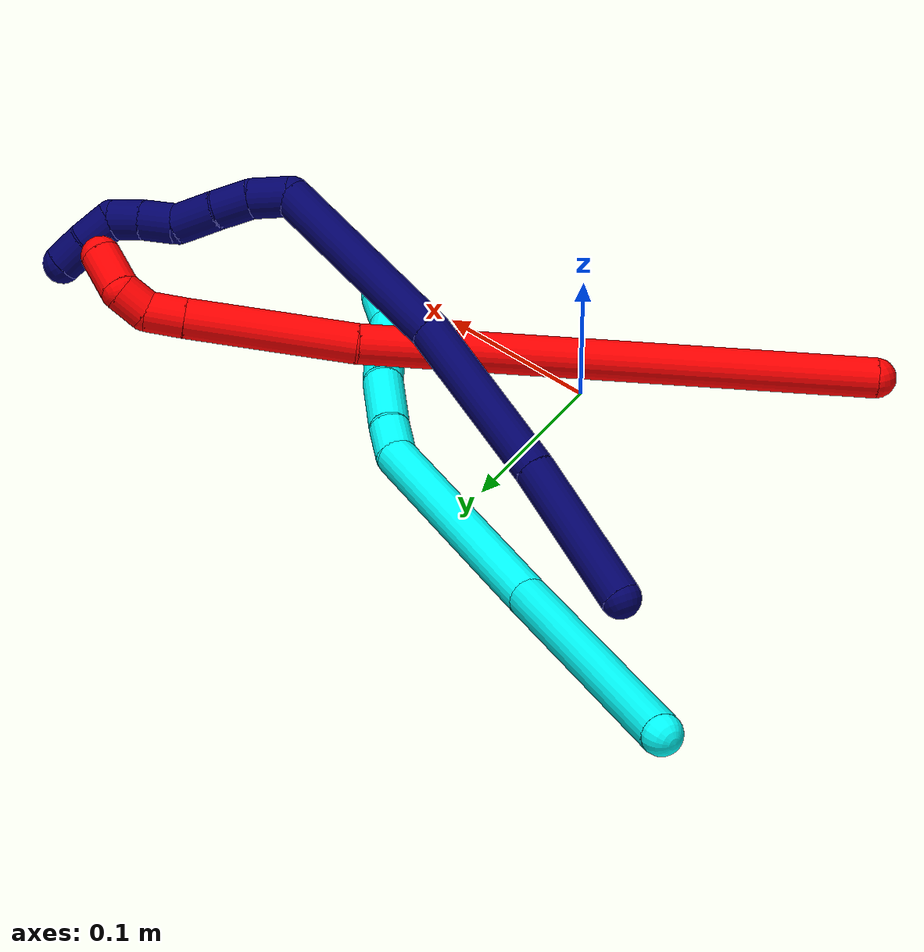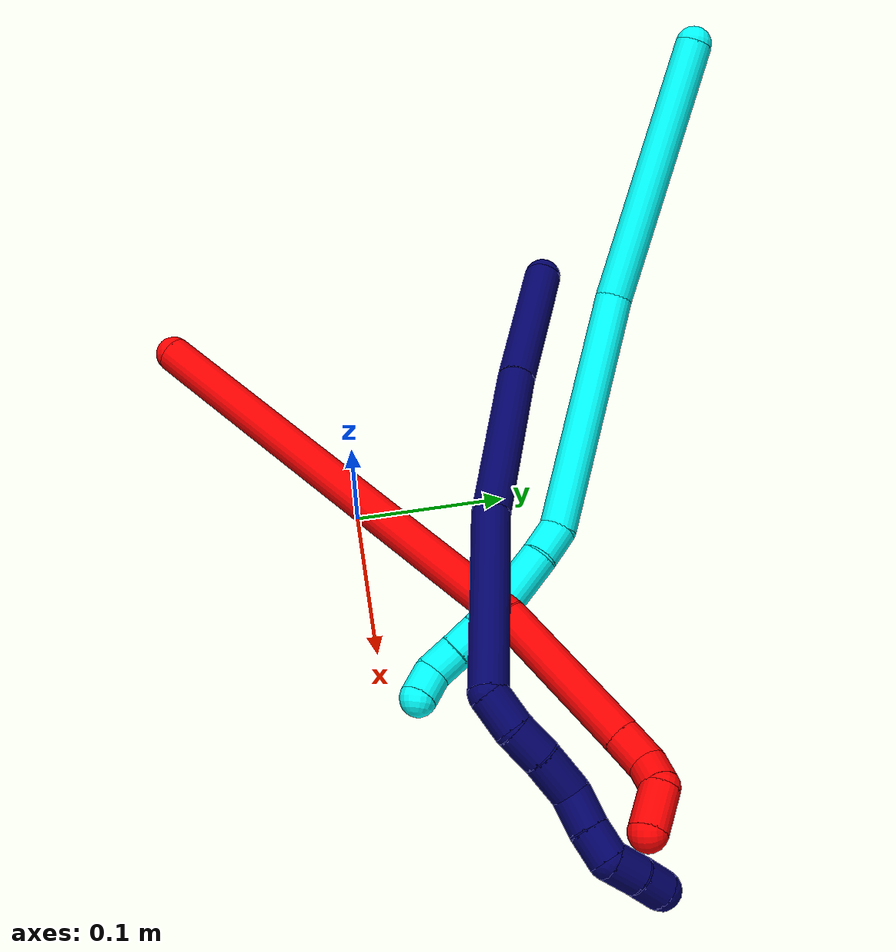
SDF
<sdf version="1.7">
 <world name="default">
  <model name="2">
   <static>0</static>
   <link name="2">
    <collision name="collision-cylinder-e_1_1_4">
     <pose>0.093615 0.027585 0.126773 -0.214255 0.62505 -0.069467</pose>
     <geometry><cylinder><radius>0.0125</radius><length>0.319976</length></cylinder></geometry>
     <surface>
      <friction><ode><mu>1.16</mu><mu2>1.16</mu2><slip1>0</slip1><slip2>0</slip2></ode></friction>
      <contact><ode><kp>1e+06</kp><kd>1</kd><max_vel>0</max_vel><min_depth>0.001</min_depth></ode></contact>
     </surface>
    </collision>
    <visual name="visual-cylinder-e_1_1_4">
     <pose>0.093615 0.027585 0.126773 -0.214255 0.62505 -0.069467</pose>
     <geometry><cylinder><radius>0.0125</radius><length>0.319976</length></cylinder></geometry>
     <material><ambient>1 0 0 1</ambient></material>
    </visual>
    <collision name="collision-cylinder-e_2_4_5">
     <pose>0.223835 0.065012 0.290709 -0.258869 0.760906 -0.10402</pose>
     <geometry><cylinder><radius>0.0125</radius><length>0.106167</length></cylinder></geometry>
     <surface>
      <friction><ode><mu>1.16</mu><mu2>1.16</mu2><slip1>0</slip1><slip2>0</slip2></ode></friction>
      <contact><ode><kp>1e+06</kp><kd>1</kd><max_vel>0</max_vel><min_depth>0.001</min_depth></ode></contact>
     </surface>
    </collision>
    <visual name="visual-cylinder-e_2_4_5">
     <pose>0.223835 0.065012 0.290709 -0.258869 0.760906 -0.10402</pose>
     <geometry><cylinder><radius>0.0125</radius><length>0.106167</length></cylinder></geometry>
     <material><ambient>1 0 0 1</ambient></material>
    </visual>
    <collision name="collision-cylinder-e_3_5_6">
     <pose>0.269037 0.076873 0.336244 -0.236797 0.784462 -0.098336</pose>
     <geometry><cylinder><radius>0.0125</radius><length>0.024336</length></cylinder></geometry>
     <surface>
      <friction><ode><mu>1.16</mu><mu2>1.16</mu2><slip1>0</slip1><slip2>0</slip2></ode></friction>
      <contact><ode><kp>1e+06</kp><kd>1</kd><max_vel>0</max_vel><min_depth>0.001</min_depth></ode></contact>
     </surface>
    </collision>
    <visual name="visual-cylinder-e_3_5_6">
     <pose>0.269037 0.076873 0.336244 -0.236797 0.784462 -0.098336</pose>
     <geometry><cylinder><radius>0.0125</radius><length>0.024336</length></cylinder></geometry>
     <material><ambient>1 0 0 1</ambient></material>
    </visual>
    <collision name="collision-cylinder-e_4_6_7">
     <pose>0.285978 0.076029 0.349469 0.533204 0.976835 0.288219</pose>
     <geometry><cylinder><radius>0.0125</radius><length>0.020141</length></cylinder></geometry>
     <surface>
      <friction><ode><mu>1.16</mu><mu2>1.16</mu2><slip1>0</slip1><slip2>0</slip2></ode></friction>
      <contact><ode><kp>1e+06</kp><kd>1</kd><max_vel>0</max_vel><min_depth>0.001</min_depth></ode></contact>
     </surface>
    </collision>
    <visual name="visual-cylinder-e_4_6_7">
     <pose>0.285978 0.076029 0.349469 0.533204 0.976835 0.288219</pose>
     <geometry><cylinder><radius>0.0125</radius><length>0.020141</length></cylinder></geometry>
     <material><ambient>1 0 0 1</ambient></material>
    </visual>
    <collision name="collision-cylinder-e_5_7_2">
     <pose>0.308778 0.072412 0.351808 2.85108 1.39116 2.79463</pose>
     <geometry><cylinder><radius>0.0125</radius><length>0.02938</length></cylinder></geometry>
     <surface>
      <friction><ode><mu>1.16</mu><mu2>1.16</mu2><slip1>0</slip1><slip2>0</slip2></ode></friction>
      <contact><ode><kp>1e+06</kp><kd>1</kd><max_vel>0</max_vel><min_depth>0.001</min_depth></ode></contact>
     </surface>
    </collision>
    <visual name="visual-cylinder-e_5_7_2">
     <pose>0.308778 0.072412 0.351808 2.85108 1.39116 2.79463</pose>
     <geometry><cylinder><radius>0.0125</radius><length>0.02938</length></cylinder></geometry>
     <material><ambient>1 0 0 1</ambient></material>
    </visual>
    <collision name="collision-sphere-2">
     <pose>0.323231 0.07166 0.349293 0 -0 0</pose>
     <geometry><sphere><radius>0.0125</radius></sphere></geometry>
     <surface>
      <friction><ode><mu>1.16</mu><mu2>1.16</mu2><slip1>0</slip1><slip2>0</slip2></ode></friction>
      <contact><ode><kp>1e+06</kp><kd>1</kd><max_vel>0</max_vel><min_depth>0.001</min_depth></ode></contact>
     </surface>
    </collision>
    <visual name="visual-sphere-2">
     <pose>0.323231 0.07166 0.349293 0 -0 0</pose>
     <geometry><sphere><radius>0.0125</radius></sphere></geometry>
     <material><ambient>1 0 0 1</ambient></material>
    </visual>
    <collision name="collision-sphere-7">
     <pose>0.294324 0.073164 0.354323 0 -0 0</pose>
     <geometry><sphere><radius>0.0125</radius></sphere></geometry>
     <surface>
      <friction><ode><mu>1.16</mu><mu2>1.16</mu2><slip1>0</slip1><slip2>0</slip2></ode></friction>
      <contact><ode><kp>1e+06</kp><kd>1</kd><max_vel>0</max_vel><min_depth>0.001</min_depth></ode></contact>
     </surface>
    </collision>
    <visual name="visual-sphere-7">
     <pose>0.294324 0.073164 0.354323 0 -0 0</pose>
     <geometry><sphere><radius>0.0125</radius></sphere></geometry>
     <material><ambient>1 0 0 1</ambient></material>
    </visual>
    <collision name="collision-sphere-6">
     <pose>0.277633 0.078893 0.344616 0 -0 0</pose>
     <geometry><sphere><radius>0.0125</radius></sphere></geometry>
     <surface>
      <friction><ode><mu>1.16</mu><mu2>1.16</mu2><slip1>0</slip1><slip2>0</slip2></ode></friction>
      <contact><ode><kp>1e+06</kp><kd>1</kd><max_vel>0</max_vel><min_depth>0.001</min_depth></ode></contact>
     </surface>
    </collision>
    <visual name="visual-sphere-6">
     <pose>0.277633 0.078893 0.344616 0 -0 0</pose>
     <geometry><sphere><radius>0.0125</radius></sphere></geometry>
     <material><ambient>1 0 0 1</ambient></material>
    </visual>
    <collision name="collision-sphere-5">
     <pose>0.260441 0.074853 0.327872 0 -0 0</pose>
     <geometry><sphere><radius>0.0125</radius></sphere></geometry>
     <surface>
      <friction><ode><mu>1.16</mu><mu2>1.16</mu2><slip1>0</slip1><slip2>0</slip2></ode></friction>
      <contact><ode><kp>1e+06</kp><kd>1</kd><max_vel>0</max_vel><min_depth>0.001</min_depth></ode></contact>
     </surface>
    </collision>
    <visual name="visual-sphere-5">
     <pose>0.260441 0.074853 0.327872 0 -0 0</pose>
     <geometry><sphere><radius>0.0125</radius></sphere></geometry>
     <material><ambient>1 0 0 1</ambient></material>
    </visual>
    <collision name="collision-sphere-1">
     <geometry><sphere><radius>0.0125</radius></sphere></geometry>
     <surface>
      <friction><ode><mu>1.16</mu><mu2>1.16</mu2><slip1>0</slip1><slip2>0</slip2></ode></friction>
      <contact><ode><kp>1e+06</kp><kd>1</kd><max_vel>0</max_vel><min_depth>0.001</min_depth></ode></contact>
     </surface>
    </collision>
    <visual name="visual-sphere-1">
     <geometry><sphere><radius>0.0125</radius></sphere></geometry>
     <material><ambient>1 0 0 1</ambient></material>
    </visual>
    <collision name="collision-sphere-4">
     <pose>0.18723 0.05517 0.253547 0 -0 0</pose>
     <geometry><sphere><radius>0.0125</radius></sphere></geometry>
     <surface>
      <friction><ode><mu>1.16</mu><mu2>1.16</mu2><slip1>0</slip1><slip2>0</slip2></ode></friction>
      <contact><ode><kp>1e+06</kp><kd>1</kd><max_vel>0</max_vel><min_depth>0.001</min_depth></ode></contact>
     </surface>
    </collision>
    <visual name="visual-sphere-4">
     <pose>0.18723 0.05517 0.253547 0 -0 0</pose>
     <geometry><sphere><radius>0.0125</radius></sphere></geometry>
     <material><ambient>1 0 0 1</ambient></material>
    </visual>
    <inertial>
     <pose>0.150195 0.042516 0.193971 0 -0 0</pose>
     <mass>0.5</mass>
     <inertia>
      <ixx>0.002159</ixx>
      <ixy>0</ixy>
      <ixz>0</ixz>
      <iyy>0.002649</iyy>
      <iyz>0</iyz>
      <izz>-0.002147</izz>
     </inertia>
    </inertial>
   </link>
   <pose>-0.142287 -0.112743 0.011897 -1.27674 -0.086028 -0.278756</pose>
  </model>
  <model name="3">
   <static>0</static>
   <link name="3">
    <collision name="collision-cylinder-e_1_1_4">
     <pose>-0.000251 -0.025427 -0.089431 2.86458 -0.002703 -0.019392</pose>
     <geometry><cylinder><radius>0.0125</radius><length>0.185951</length></cylinder></geometry>
     <surface>
      <friction><ode><mu>1.16</mu><mu2>1.16</mu2><slip1>0</slip1><slip2>0</slip2></ode></friction>
      <contact><ode><kp>1e+06</kp><kd>1</kd><max_vel>0</max_vel><min_depth>0.001</min_depth></ode></contact>
     </surface>
    </collision>
    <visual name="visual-cylinder-e_1_1_4">
     <pose>-0.000251 -0.025427 -0.089431 2.86458 -0.002703 -0.019392</pose>
     <geometry><cylinder><radius>0.0125</radius><length>0.185951</length></cylinder></geometry>
     <material><ambient>0.003922 1 0.996078 1</ambient></material>
    </visual>
    <collision name="collision-cylinder-e_2_4_5">
     <pose>0.005912 -0.059751 -0.261089 3.0338 0.0774 1.24505</pose>
     <geometry><cylinder><radius>0.0125</radius><length>0.165912</length></cylinder></geometry>
     <surface>
      <friction><ode><mu>1.16</mu><mu2>1.16</mu2><slip1>0</slip1><slip2>0</slip2></ode></friction>
      <contact><ode><kp>1e+06</kp><kd>1</kd><max_vel>0</max_vel><min_depth>0.001</min_depth></ode></contact>
     </surface>
    </collision>
    <visual name="visual-cylinder-e_2_4_5">
     <pose>0.005912 -0.059751 -0.261089 3.0338 0.0774 1.24505</pose>
     <geometry><cylinder><radius>0.0125</radius><length>0.165912</length></cylinder></geometry>
     <material><ambient>0.003922 1 0.996078 1</ambient></material>
    </visual>
    <collision name="collision-cylinder-e_3_5_6">
     <pose>0.017609 -0.070813 -0.353676 2.93564 0.462976 2.31521</pose>
     <geometry><cylinder><radius>0.0125</radius><length>0.023656</length></cylinder></geometry>
     <surface>
      <friction><ode><mu>1.16</mu><mu2>1.16</mu2><slip1>0</slip1><slip2>0</slip2></ode></friction>
      <contact><ode><kp>1e+06</kp><kd>1</kd><max_vel>0</max_vel><min_depth>0.001</min_depth></ode></contact>
     </surface>
    </collision>
    <visual name="visual-cylinder-e_3_5_6">
     <pose>0.017609 -0.070813 -0.353676 2.93564 0.462976 2.31521</pose>
     <geometry><cylinder><radius>0.0125</radius><length>0.023656</length></cylinder></geometry>
     <material><ambient>0.003922 1 0.996078 1</ambient></material>
    </visual>
    <collision name="collision-cylinder-e_4_6_7">
     <pose>0.030888 -0.079716 -0.381707 2.77729 0.400032 1.66652</pose>
     <geometry><cylinder><radius>0.0125</radius><length>0.041069</length></cylinder></geometry>
     <surface>
      <friction><ode><mu>1.16</mu><mu2>1.16</mu2><slip1>0</slip1><slip2>0</slip2></ode></friction>
      <contact><ode><kp>1e+06</kp><kd>1</kd><max_vel>0</max_vel><min_depth>0.001</min_depth></ode></contact>
     </surface>
    </collision>
    <visual name="visual-cylinder-e_4_6_7">
     <pose>0.030888 -0.079716 -0.381707 2.77729 0.400032 1.66652</pose>
     <geometry><cylinder><radius>0.0125</radius><length>0.041069</length></cylinder></geometry>
     <material><ambient>0.003922 1 0.996078 1</ambient></material>
    </visual>
    <collision name="collision-cylinder-e_5_7_8">
     <pose>0.042732 -0.091796 -0.408161 2.59523 0.358098 1.14705</pose>
     <geometry><cylinder><radius>0.0125</radius><length>0.021949</length></cylinder></geometry>
     <surface>
      <friction><ode><mu>1.16</mu><mu2>1.16</mu2><slip1>0</slip1><slip2>0</slip2></ode></friction>
      <contact><ode><kp>1e+06</kp><kd>1</kd><max_vel>0</max_vel><min_depth>0.001</min_depth></ode></contact>
     </surface>
    </collision>
    <visual name="visual-cylinder-e_5_7_8">
     <pose>0.042732 -0.091796 -0.408161 2.59523 0.358098 1.14705</pose>
     <geometry><cylinder><radius>0.0125</radius><length>0.021949</length></cylinder></geometry>
     <material><ambient>0.003922 1 0.996078 1</ambient></material>
    </visual>
    <collision name="collision-cylinder-e_6_8_9">
     <pose>0.051042 -0.101947 -0.424779 2.59093 0.451919 1.36612</pose>
     <geometry><cylinder><radius>0.0125</radius><length>0.020442</length></cylinder></geometry>
     <surface>
      <friction><ode><mu>1.16</mu><mu2>1.16</mu2><slip1>0</slip1><slip2>0</slip2></ode></friction>
      <contact><ode><kp>1e+06</kp><kd>1</kd><max_vel>0</max_vel><min_depth>0.001</min_depth></ode></contact>
     </surface>
    </collision>
    <visual name="visual-cylinder-e_6_8_9">
     <pose>0.051042 -0.101947 -0.424779 2.59093 0.451919 1.36612</pose>
     <geometry><cylinder><radius>0.0125</radius><length>0.020442</length></cylinder></geometry>
     <material><ambient>0.003922 1 0.996078 1</ambient></material>
    </visual>
    <collision name="collision-cylinder-e_7_9_10">
     <pose>0.059876 -0.112036 -0.440329 2.54165 0.437384 1.24611</pose>
     <geometry><cylinder><radius>0.0125</radius><length>0.020637</length></cylinder></geometry>
     <surface>
      <friction><ode><mu>1.16</mu><mu2>1.16</mu2><slip1>0</slip1><slip2>0</slip2></ode></friction>
      <contact><ode><kp>1e+06</kp><kd>1</kd><max_vel>0</max_vel><min_depth>0.001</min_depth></ode></contact>
     </surface>
    </collision>
    <visual name="visual-cylinder-e_7_9_10">
     <pose>0.059876 -0.112036 -0.440329 2.54165 0.437384 1.24611</pose>
     <geometry><cylinder><radius>0.0125</radius><length>0.020637</length></cylinder></geometry>
     <material><ambient>0.003922 1 0.996078 1</ambient></material>
    </visual>
    <collision name="collision-cylinder-e_8_10_2">
     <pose>0.069027 -0.117448 -0.457044 3.12661 0.488211 3.08146</pose>
     <geometry><cylinder><radius>0.0125</radius><length>0.020384</length></cylinder></geometry>
     <surface>
      <friction><ode><mu>1.16</mu><mu2>1.16</mu2><slip1>0</slip1><slip2>0</slip2></ode></friction>
      <contact><ode><kp>1e+06</kp><kd>1</kd><max_vel>0</max_vel><min_depth>0.001</min_depth></ode></contact>
     </surface>
    </collision>
    <visual name="visual-cylinder-e_8_10_2">
     <pose>0.069027 -0.117448 -0.457044 3.12661 0.488211 3.08146</pose>
     <geometry><cylinder><radius>0.0125</radius><length>0.020384</length></cylinder></geometry>
     <material><ambient>0.003922 1 0.996078 1</ambient></material>
    </visual>
    <collision name="collision-sphere-2">
     <pose>0.073808 -0.117583 -0.466045 0 -0 0</pose>
     <geometry><sphere><radius>0.0125</radius></sphere></geometry>
     <surface>
      <friction><ode><mu>1.16</mu><mu2>1.16</mu2><slip1>0</slip1><slip2>0</slip2></ode></friction>
      <contact><ode><kp>1e+06</kp><kd>1</kd><max_vel>0</max_vel><min_depth>0.001</min_depth></ode></contact>
     </surface>
    </collision>
    <visual name="visual-sphere-2">
     <pose>0.073808 -0.117583 -0.466045 0 -0 0</pose>
     <geometry><sphere><radius>0.0125</radius></sphere></geometry>
     <material><ambient>0.003922 1 0.996078 1</ambient></material>
    </visual>
    <collision name="collision-sphere-10">
     <pose>0.064246 -0.117313 -0.448044 0 -0 0</pose>
     <geometry><sphere><radius>0.0125</radius></sphere></geometry>
     <surface>
      <friction><ode><mu>1.16</mu><mu2>1.16</mu2><slip1>0</slip1><slip2>0</slip2></ode></friction>
      <contact><ode><kp>1e+06</kp><kd>1</kd><max_vel>0</max_vel><min_depth>0.001</min_depth></ode></contact>
     </surface>
    </collision>
    <visual name="visual-sphere-10">
     <pose>0.064246 -0.117313 -0.448044 0 -0 0</pose>
     <geometry><sphere><radius>0.0125</radius></sphere></geometry>
     <material><ambient>0.003922 1 0.996078 1</ambient></material>
    </visual>
    <collision name="collision-sphere-9">
     <pose>0.055505 -0.106758 -0.432614 0 -0 0</pose>
     <geometry><sphere><radius>0.0125</radius></sphere></geometry>
     <surface>
      <friction><ode><mu>1.16</mu><mu2>1.16</mu2><slip1>0</slip1><slip2>0</slip2></ode></friction>
      <contact><ode><kp>1e+06</kp><kd>1</kd><max_vel>0</max_vel><min_depth>0.001</min_depth></ode></contact>
     </surface>
    </collision>
    <visual name="visual-sphere-9">
     <pose>0.055505 -0.106758 -0.432614 0 -0 0</pose>
     <geometry><sphere><radius>0.0125</radius></sphere></geometry>
     <material><ambient>0.003922 1 0.996078 1</ambient></material>
    </visual>
    <collision name="collision-sphere-4">
     <pose>-0.000503 -0.050854 -0.178862 0 -0 0</pose>
     <geometry><sphere><radius>0.0125</radius></sphere></geometry>
     <surface>
      <friction><ode><mu>1.16</mu><mu2>1.16</mu2><slip1>0</slip1><slip2>0</slip2></ode></friction>
      <contact><ode><kp>1e+06</kp><kd>1</kd><max_vel>0</max_vel><min_depth>0.001</min_depth></ode></contact>
     </surface>
    </collision>
    <visual name="visual-sphere-4">
     <pose>-0.000503 -0.050854 -0.178862 0 -0 0</pose>
     <geometry><sphere><radius>0.0125</radius></sphere></geometry>
     <material><ambient>0.003922 1 0.996078 1</ambient></material>
    </visual>
    <collision name="collision-sphere-1">
     <geometry><sphere><radius>0.0125</radius></sphere></geometry>
     <surface>
      <friction><ode><mu>1.16</mu><mu2>1.16</mu2><slip1>0</slip1><slip2>0</slip2></ode></friction>
      <contact><ode><kp>1e+06</kp><kd>1</kd><max_vel>0</max_vel><min_depth>0.001</min_depth></ode></contact>
     </surface>
    </collision>
    <visual name="visual-sphere-1">
     <geometry><sphere><radius>0.0125</radius></sphere></geometry>
     <material><ambient>0.003922 1 0.996078 1</ambient></material>
    </visual>
    <collision name="collision-sphere-8">
     <pose>0.046578 -0.097136 -0.416943 0 -0 0</pose>
     <geometry><sphere><radius>0.0125</radius></sphere></geometry>
     <surface>
      <friction><ode><mu>1.16</mu><mu2>1.16</mu2><slip1>0</slip1><slip2>0</slip2></ode></friction>
      <contact><ode><kp>1e+06</kp><kd>1</kd><max_vel>0</max_vel><min_depth>0.001</min_depth></ode></contact>
     </surface>
    </collision>
    <visual name="visual-sphere-8">
     <pose>0.046578 -0.097136 -0.416943 0 -0 0</pose>
     <geometry><sphere><radius>0.0125</radius></sphere></geometry>
     <material><ambient>0.003922 1 0.996078 1</ambient></material>
    </visual>
    <collision name="collision-sphere-5">
     <pose>0.012326 -0.068649 -0.343317 0 -0 0</pose>
     <geometry><sphere><radius>0.0125</radius></sphere></geometry>
     <surface>
      <friction><ode><mu>1.16</mu><mu2>1.16</mu2><slip1>0</slip1><slip2>0</slip2></ode></friction>
      <contact><ode><kp>1e+06</kp><kd>1</kd><max_vel>0</max_vel><min_depth>0.001</min_depth></ode></contact>
     </surface>
    </collision>
    <visual name="visual-sphere-5">
     <pose>0.012326 -0.068649 -0.343317 0 -0 0</pose>
     <geometry><sphere><radius>0.0125</radius></sphere></geometry>
     <material><ambient>0.003922 1 0.996078 1</ambient></material>
    </visual>
    <collision name="collision-sphere-6">
     <pose>0.022891 -0.072978 -0.364035 0 -0 0</pose>
     <geometry><sphere><radius>0.0125</radius></sphere></geometry>
     <surface>
      <friction><ode><mu>1.16</mu><mu2>1.16</mu2><slip1>0</slip1><slip2>0</slip2></ode></friction>
      <contact><ode><kp>1e+06</kp><kd>1</kd><max_vel>0</max_vel><min_depth>0.001</min_depth></ode></contact>
     </surface>
    </collision>
    <visual name="visual-sphere-6">
     <pose>0.022891 -0.072978 -0.364035 0 -0 0</pose>
     <geometry><sphere><radius>0.0125</radius></sphere></geometry>
     <material><ambient>0.003922 1 0.996078 1</ambient></material>
    </visual>
    <collision name="collision-sphere-7">
     <pose>0.038885 -0.086455 -0.399379 0 -0 0</pose>
     <geometry><sphere><radius>0.0125</radius></sphere></geometry>
     <surface>
      <friction><ode><mu>1.16</mu><mu2>1.16</mu2><slip1>0</slip1><slip2>0</slip2></ode></friction>
      <contact><ode><kp>1e+06</kp><kd>1</kd><max_vel>0</max_vel><min_depth>0.001</min_depth></ode></contact>
     </surface>
    </collision>
    <visual name="visual-sphere-7">
     <pose>0.038885 -0.086455 -0.399379 0 -0 0</pose>
     <geometry><sphere><radius>0.0125</radius></sphere></geometry>
     <material><ambient>0.003922 1 0.996078 1</ambient></material>
    </visual>
    <inertial>
     <pose>0.014486 -0.056791 -0.240072 0 -0 0</pose>
     <mass>0.5</mass>
     <inertia>
      <ixx>0.001038</ixx>
      <ixy>0</ixy>
      <ixz>0</ixz>
      <iyy>-0.00028</iyy>
      <iyz>0</iyz>
      <izz>0.000124</izz>
     </inertia>
    </inertial>
   </link>
   <pose>-0.25679 0.27335 0.142265 1.25496 -0.79013 -1.6143</pose>
  </model>
  <model name="7">
   <static>0</static>
   <link name="7">
    <collision name="collision-cylinder-e_1_1_4">
     <pose>0.011891 -0.012845 0.045643 0.274335 0.245724 0.034087</pose>
     <geometry><cylinder><radius>0.0125</radius><length>0.097768</length></cylinder></geometry>
     <surface>
      <friction><ode><mu>1.16</mu><mu2>1.16</mu2><slip1>0</slip1><slip2>0</slip2></ode></friction>
      <contact><ode><kp>1e+06</kp><kd>1</kd><max_vel>0</max_vel><min_depth>0.001</min_depth></ode></contact>
     </surface>
    </collision>
    <visual name="visual-cylinder-e_1_1_4">
     <pose>0.011891 -0.012845 0.045643 0.274335 0.245724 0.034087</pose>
     <geometry><cylinder><radius>0.0125</radius><length>0.097768</length></cylinder></geometry>
     <material><ambient>0.003922 0 0.403922 1</ambient></material>
    </visual>
    <collision name="collision-cylinder-e_2_4_5">
     <pose>0.040296 -0.040086 0.143163 0.270683 0.29761 0.040823</pose>
     <geometry><cylinder><radius>0.0125</radius><length>0.112627</length></cylinder></geometry>
     <surface>
      <friction><ode><mu>1.16</mu><mu2>1.16</mu2><slip1>0</slip1><slip2>0</slip2></ode></friction>
      <contact><ode><kp>1e+06</kp><kd>1</kd><max_vel>0</max_vel><min_depth>0.001</min_depth></ode></contact>
     </surface>
    </collision>
    <visual name="visual-cylinder-e_2_4_5">
     <pose>0.040296 -0.040086 0.143163 0.270683 0.29761 0.040823</pose>
     <geometry><cylinder><radius>0.0125</radius><length>0.112627</length></cylinder></geometry>
     <material><ambient>0.003922 0 0.403922 1</ambient></material>
    </visual>
    <collision name="collision-cylinder-e_3_5_6">
     <pose>0.083966 -0.069084 0.250632 0.256872 0.441383 0.057931</pose>
     <geometry><cylinder><radius>0.0125</radius><length>0.12714</length></cylinder></geometry>
     <surface>
      <friction><ode><mu>1.16</mu><mu2>1.16</mu2><slip1>0</slip1><slip2>0</slip2></ode></friction>
      <contact><ode><kp>1e+06</kp><kd>1</kd><max_vel>0</max_vel><min_depth>0.001</min_depth></ode></contact>
     </surface>
    </collision>
    <visual name="visual-cylinder-e_3_5_6">
     <pose>0.083966 -0.069084 0.250632 0.256872 0.441383 0.057931</pose>
     <geometry><cylinder><radius>0.0125</radius><length>0.12714</length></cylinder></geometry>
     <material><ambient>0.003922 0 0.403922 1</ambient></material>
    </visual>
    <collision name="collision-cylinder-e_4_6_7">
     <pose>0.122877 -0.085738 0.310267 0.469467 1.20266 0.325248</pose>
     <geometry><cylinder><radius>0.0125</radius><length>0.025199</length></cylinder></geometry>
     <surface>
      <friction><ode><mu>1.16</mu><mu2>1.16</mu2><slip1>0</slip1><slip2>0</slip2></ode></friction>
      <contact><ode><kp>1e+06</kp><kd>1</kd><max_vel>0</max_vel><min_depth>0.001</min_depth></ode></contact>
     </surface>
    </collision>
    <visual name="visual-cylinder-e_4_6_7">
     <pose>0.122877 -0.085738 0.310267 0.469467 1.20266 0.325248</pose>
     <geometry><cylinder><radius>0.0125</radius><length>0.025199</length></cylinder></geometry>
     <material><ambient>0.003922 0 0.403922 1</ambient></material>
    </visual>
    <collision name="collision-cylinder-e_5_7_8">
     <pose>0.145969 -0.089806 0.315199 1.15597 1.37882 0.986717</pose>
     <geometry><cylinder><radius>0.0125</radius><length>0.023098</length></cylinder></geometry>
     <surface>
      <friction><ode><mu>1.16</mu><mu2>1.16</mu2><slip1>0</slip1><slip2>0</slip2></ode></friction>
      <contact><ode><kp>1e+06</kp><kd>1</kd><max_vel>0</max_vel><min_depth>0.001</min_depth></ode></contact>
     </surface>
    </collision>
    <visual name="visual-cylinder-e_5_7_8">
     <pose>0.145969 -0.089806 0.315199 1.15597 1.37882 0.986717</pose>
     <geometry><cylinder><radius>0.0125</radius><length>0.023098</length></cylinder></geometry>
     <material><ambient>0.003922 0 0.403922 1</ambient></material>
    </visual>
    <collision name="collision-cylinder-e_6_8_9">
     <pose>0.170704 -0.09577 0.31699 1.34592 1.27729 1.06871</pose>
     <geometry><cylinder><radius>0.0125</radius><length>0.027993</length></cylinder></geometry>
     <surface>
      <friction><ode><mu>1.16</mu><mu2>1.16</mu2><slip1>0</slip1><slip2>0</slip2></ode></friction>
      <contact><ode><kp>1e+06</kp><kd>1</kd><max_vel>0</max_vel><min_depth>0.001</min_depth></ode></contact>
     </surface>
    </collision>
    <visual name="visual-cylinder-e_6_8_9">
     <pose>0.170704 -0.09577 0.31699 1.34592 1.27729 1.06871</pose>
     <geometry><cylinder><radius>0.0125</radius><length>0.027993</length></cylinder></geometry>
     <material><ambient>0.003922 0 0.403922 1</ambient></material>
    </visual>
    <collision name="collision-cylinder-e_7_9_10">
     <pose>0.193852 -0.102384 0.323291 0.458782 1.01763 0.259037</pose>
     <geometry><cylinder><radius>0.0125</radius><length>0.022918</length></cylinder></geometry>
     <surface>
      <friction><ode><mu>1.16</mu><mu2>1.16</mu2><slip1>0</slip1><slip2>0</slip2></ode></friction>
      <contact><ode><kp>1e+06</kp><kd>1</kd><max_vel>0</max_vel><min_depth>0.001</min_depth></ode></contact>
     </surface>
    </collision>
    <visual name="visual-cylinder-e_7_9_10">
     <pose>0.193852 -0.102384 0.323291 0.458782 1.01763 0.259037</pose>
     <geometry><cylinder><radius>0.0125</radius><length>0.022918</length></cylinder></geometry>
     <material><ambient>0.003922 0 0.403922 1</ambient></material>
    </visual>
    <collision name="collision-cylinder-e_8_10_11">
     <pose>0.213081 -0.106851 0.332737 0.41848 1.13355 0.268662</pose>
     <geometry><cylinder><radius>0.0125</radius><length>0.020926</length></cylinder></geometry>
     <surface>
      <friction><ode><mu>1.16</mu><mu2>1.16</mu2><slip1>0</slip1><slip2>0</slip2></ode></friction>
      <contact><ode><kp>1e+06</kp><kd>1</kd><max_vel>0</max_vel><min_depth>0.001</min_depth></ode></contact>
     </surface>
    </collision>
    <visual name="visual-cylinder-e_8_10_11">
     <pose>0.213081 -0.106851 0.332737 0.41848 1.13355 0.268662</pose>
     <geometry><cylinder><radius>0.0125</radius><length>0.020926</length></cylinder></geometry>
     <material><ambient>0.003922 0 0.403922 1</ambient></material>
    </visual>
    <collision name="collision-cylinder-e_9_11_12">
     <pose>0.23309 -0.110122 0.333544 2.71538 1.24486 2.55583</pose>
     <geometry><cylinder><radius>0.0125</radius><length>0.022232</length></cylinder></geometry>
     <surface>
      <friction><ode><mu>1.16</mu><mu2>1.16</mu2><slip1>0</slip1><slip2>0</slip2></ode></friction>
      <contact><ode><kp>1e+06</kp><kd>1</kd><max_vel>0</max_vel><min_depth>0.001</min_depth></ode></contact>
     </surface>
    </collision>
    <visual name="visual-cylinder-e_9_11_12">
     <pose>0.23309 -0.110122 0.333544 2.71538 1.24486 2.55583</pose>
     <geometry><cylinder><radius>0.0125</radius><length>0.022232</length></cylinder></geometry>
     <material><ambient>0.003922 0 0.403922 1</ambient></material>
    </visual>
    <collision name="collision-cylinder-e_10_12_2">
     <pose>0.252777 -0.113993 0.326923 2.52431 1.14574 2.22346</pose>
     <geometry><cylinder><radius>0.0125</radius><length>0.0201</length></cylinder></geometry>
     <surface>
      <friction><ode><mu>1.16</mu><mu2>1.16</mu2><slip1>0</slip1><slip2>0</slip2></ode></friction>
      <contact><ode><kp>1e+06</kp><kd>1</kd><max_vel>0</max_vel><min_depth>0.001</min_depth></ode></contact>
     </surface>
    </collision>
    <visual name="visual-cylinder-e_10_12_2">
     <pose>0.252777 -0.113993 0.326923 2.52431 1.14574 2.22346</pose>
     <geometry><cylinder><radius>0.0125</radius><length>0.0201</length></cylinder></geometry>
     <material><ambient>0.003922 0 0.403922 1</ambient></material>
    </visual>
    <collision name="collision-sphere-2">
     <pose>0.261932 -0.116391 0.323544 0 -0 0</pose>
     <geometry><sphere><radius>0.0125</radius></sphere></geometry>
     <surface>
      <friction><ode><mu>1.16</mu><mu2>1.16</mu2><slip1>0</slip1><slip2>0</slip2></ode></friction>
      <contact><ode><kp>1e+06</kp><kd>1</kd><max_vel>0</max_vel><min_depth>0.001</min_depth></ode></contact>
     </surface>
    </collision>
    <visual name="visual-sphere-2">
     <pose>0.261932 -0.116391 0.323544 0 -0 0</pose>
     <geometry><sphere><radius>0.0125</radius></sphere></geometry>
     <material><ambient>0.003922 0 0.403922 1</ambient></material>
    </visual>
    <collision name="collision-sphere-12">
     <pose>0.243621 -0.111594 0.330303 0 -0 0</pose>
     <geometry><sphere><radius>0.0125</radius></sphere></geometry>
     <surface>
      <friction><ode><mu>1.16</mu><mu2>1.16</mu2><slip1>0</slip1><slip2>0</slip2></ode></friction>
      <contact><ode><kp>1e+06</kp><kd>1</kd><max_vel>0</max_vel><min_depth>0.001</min_depth></ode></contact>
     </surface>
    </collision>
    <visual name="visual-sphere-12">
     <pose>0.243621 -0.111594 0.330303 0 -0 0</pose>
     <geometry><sphere><radius>0.0125</radius></sphere></geometry>
     <material><ambient>0.003922 0 0.403922 1</ambient></material>
    </visual>
    <collision name="collision-sphere-11">
     <pose>0.222559 -0.108651 0.336785 0 -0 0</pose>
     <geometry><sphere><radius>0.0125</radius></sphere></geometry>
     <surface>
      <friction><ode><mu>1.16</mu><mu2>1.16</mu2><slip1>0</slip1><slip2>0</slip2></ode></friction>
      <contact><ode><kp>1e+06</kp><kd>1</kd><max_vel>0</max_vel><min_depth>0.001</min_depth></ode></contact>
     </surface>
    </collision>
    <visual name="visual-sphere-11">
     <pose>0.222559 -0.108651 0.336785 0 -0 0</pose>
     <geometry><sphere><radius>0.0125</radius></sphere></geometry>
     <material><ambient>0.003922 0 0.403922 1</ambient></material>
    </visual>
    <collision name="collision-sphere-10">
     <pose>0.203602 -0.10505 0.328689 0 -0 0</pose>
     <geometry><sphere><radius>0.0125</radius></sphere></geometry>
     <surface>
      <friction><ode><mu>1.16</mu><mu2>1.16</mu2><slip1>0</slip1><slip2>0</slip2></ode></friction>
      <contact><ode><kp>1e+06</kp><kd>1</kd><max_vel>0</max_vel><min_depth>0.001</min_depth></ode></contact>
     </surface>
    </collision>
    <visual name="visual-sphere-10">
     <pose>0.203602 -0.10505 0.328689 0 -0 0</pose>
     <geometry><sphere><radius>0.0125</radius></sphere></geometry>
     <material><ambient>0.003922 0 0.403922 1</ambient></material>
    </visual>
    <collision name="collision-sphere-9">
     <pose>0.184102 -0.099718 0.317893 0 -0 0</pose>
     <geometry><sphere><radius>0.0125</radius></sphere></geometry>
     <surface>
      <friction><ode><mu>1.16</mu><mu2>1.16</mu2><slip1>0</slip1><slip2>0</slip2></ode></friction>
      <contact><ode><kp>1e+06</kp><kd>1</kd><max_vel>0</max_vel><min_depth>0.001</min_depth></ode></contact>
     </surface>
    </collision>
    <visual name="visual-sphere-9">
     <pose>0.184102 -0.099718 0.317893 0 -0 0</pose>
     <geometry><sphere><radius>0.0125</radius></sphere></geometry>
     <material><ambient>0.003922 0 0.403922 1</ambient></material>
    </visual>
    <collision name="collision-sphere-4">
     <pose>0.023783 -0.02569 0.091285 0 -0 0</pose>
     <geometry><sphere><radius>0.0125</radius></sphere></geometry>
     <surface>
      <friction><ode><mu>1.16</mu><mu2>1.16</mu2><slip1>0</slip1><slip2>0</slip2></ode></friction>
      <contact><ode><kp>1e+06</kp><kd>1</kd><max_vel>0</max_vel><min_depth>0.001</min_depth></ode></contact>
     </surface>
    </collision>
    <visual name="visual-sphere-4">
     <pose>0.023783 -0.02569 0.091285 0 -0 0</pose>
     <geometry><sphere><radius>0.0125</radius></sphere></geometry>
     <material><ambient>0.003922 0 0.403922 1</ambient></material>
    </visual>
    <collision name="collision-sphere-1">
     <geometry><sphere><radius>0.0125</radius></sphere></geometry>
     <surface>
      <friction><ode><mu>1.16</mu><mu2>1.16</mu2><slip1>0</slip1><slip2>0</slip2></ode></friction>
      <contact><ode><kp>1e+06</kp><kd>1</kd><max_vel>0</max_vel><min_depth>0.001</min_depth></ode></contact>
     </surface>
    </collision>
    <visual name="visual-sphere-1">
     <geometry><sphere><radius>0.0125</radius></sphere></geometry>
     <material><ambient>0.003922 0 0.403922 1</ambient></material>
    </visual>
    <collision name="collision-sphere-8">
     <pose>0.157306 -0.091823 0.316087 0 -0 0</pose>
     <geometry><sphere><radius>0.0125</radius></sphere></geometry>
     <surface>
      <friction><ode><mu>1.16</mu><mu2>1.16</mu2><slip1>0</slip1><slip2>0</slip2></ode></friction>
      <contact><ode><kp>1e+06</kp><kd>1</kd><max_vel>0</max_vel><min_depth>0.001</min_depth></ode></contact>
     </surface>
    </collision>
    <visual name="visual-sphere-8">
     <pose>0.157306 -0.091823 0.316087 0 -0 0</pose>
     <geometry><sphere><radius>0.0125</radius></sphere></geometry>
     <material><ambient>0.003922 0 0.403922 1</ambient></material>
    </visual>
    <collision name="collision-sphere-5">
     <pose>0.056809 -0.054482 0.19504 0 -0 0</pose>
     <geometry><sphere><radius>0.0125</radius></sphere></geometry>
     <surface>
      <friction><ode><mu>1.16</mu><mu2>1.16</mu2><slip1>0</slip1><slip2>0</slip2></ode></friction>
      <contact><ode><kp>1e+06</kp><kd>1</kd><max_vel>0</max_vel><min_depth>0.001</min_depth></ode></contact>
     </surface>
    </collision>
    <visual name="visual-sphere-5">
     <pose>0.056809 -0.054482 0.19504 0 -0 0</pose>
     <geometry><sphere><radius>0.0125</radius></sphere></geometry>
     <material><ambient>0.003922 0 0.403922 1</ambient></material>
    </visual>
    <collision name="collision-sphere-6">
     <pose>0.111122 -0.083687 0.306223 0 -0 0</pose>
     <geometry><sphere><radius>0.0125</radius></sphere></geometry>
     <surface>
      <friction><ode><mu>1.16</mu><mu2>1.16</mu2><slip1>0</slip1><slip2>0</slip2></ode></friction>
      <contact><ode><kp>1e+06</kp><kd>1</kd><max_vel>0</max_vel><min_depth>0.001</min_depth></ode></contact>
     </surface>
    </collision>
    <visual name="visual-sphere-6">
     <pose>0.111122 -0.083687 0.306223 0 -0 0</pose>
     <geometry><sphere><radius>0.0125</radius></sphere></geometry>
     <material><ambient>0.003922 0 0.403922 1</ambient></material>
    </visual>
    <collision name="collision-sphere-7">
     <pose>0.134633 -0.08779 0.314311 0 -0 0</pose>
     <geometry><sphere><radius>0.0125</radius></sphere></geometry>
     <surface>
      <friction><ode><mu>1.16</mu><mu2>1.16</mu2><slip1>0</slip1><slip2>0</slip2></ode></friction>
      <contact><ode><kp>1e+06</kp><kd>1</kd><max_vel>0</max_vel><min_depth>0.001</min_depth></ode></contact>
     </surface>
    </collision>
    <visual name="visual-sphere-7">
     <pose>0.134633 -0.08779 0.314311 0 -0 0</pose>
     <geometry><sphere><radius>0.0125</radius></sphere></geometry>
     <material><ambient>0.003922 0 0.403922 1</ambient></material>
    </visual>
    <inertial>
     <pose>0.093575 -0.061583 0.209565 0 -0 0</pose>
     <mass>0.5</mass>
     <inertia>
      <ixx>0.000398</ixx>
      <ixy>0</ixy>
      <ixz>0</ixz>
      <iyy>0.000393</iyy>
      <iyz>0</iyz>
      <izz>-2.3e-05</izz>
     </inertia>
    </inertial>
   </link>
   <pose>-0.140749 0.150718 0.053366 1.00258 0.295733 0.874158</pose>
  </model>
 </world>
</sdf>
